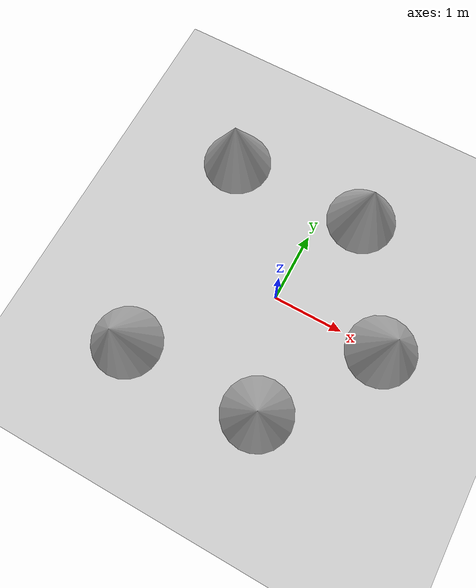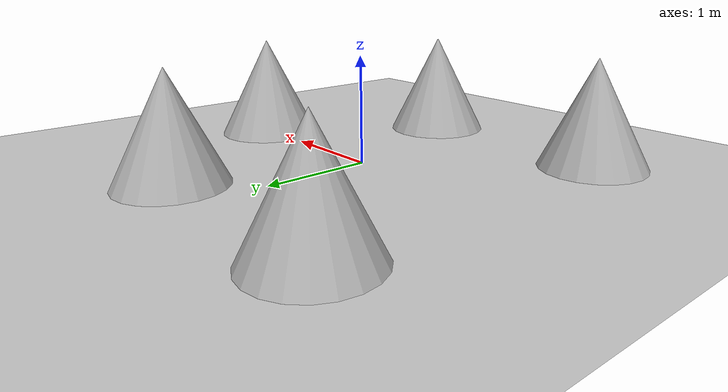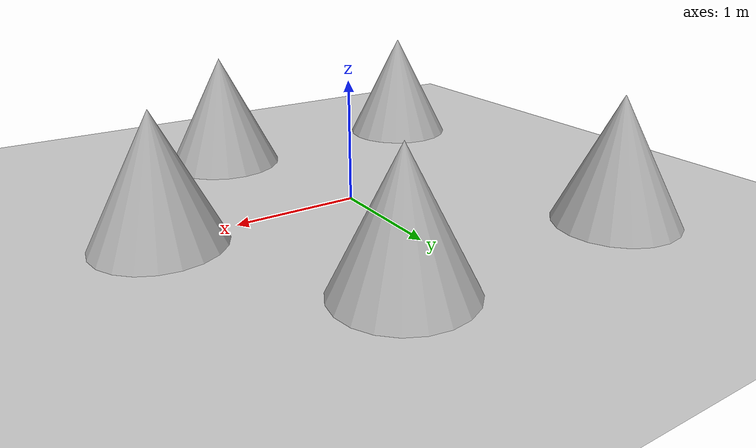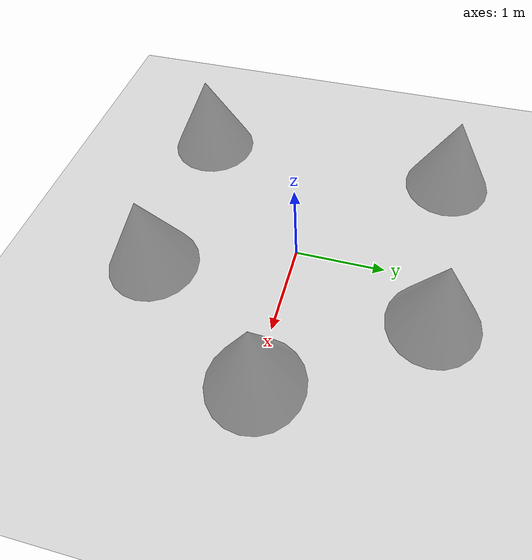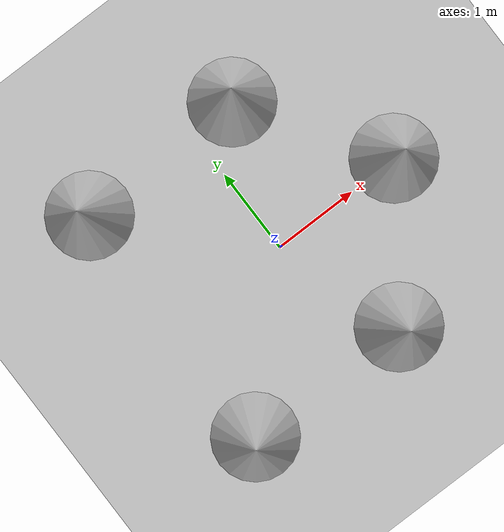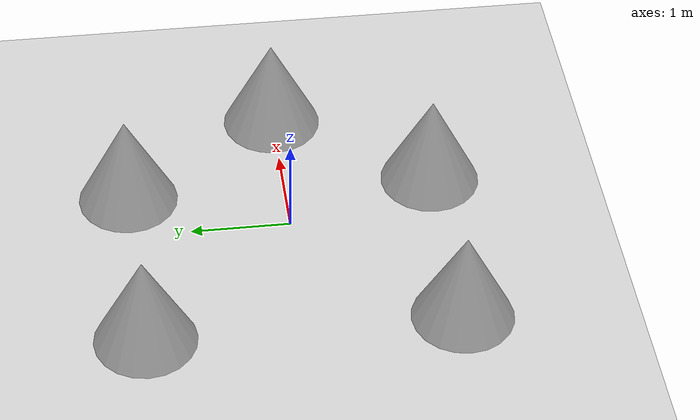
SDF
<sdf version='1.10'>
  <world name='obstacles'>
    <physics name='1ms' type='ignored'>
      <max_step_size>0.001</max_step_size>
      <real_time_factor>1</real_time_factor>
      <real_time_update_rate>1000</real_time_update_rate>
    </physics>
    <plugin name='gz::sim::systems::Physics' filename='gz-sim-physics-system'/>
    <plugin name='gz::sim::systems::UserCommands' filename='gz-sim-user-commands-system'/>
    <plugin name='gz::sim::systems::SceneBroadcaster' filename='gz-sim-scene-broadcaster-system'/>
    <plugin name='gz::sim::systems::Contact' filename='gz-sim-contact-system'/>
    <gravity>0 0 -9.8000000000000007</gravity>
    <magnetic_field>5.5644999999999998e-06 2.2875799999999999e-05 -4.2388400000000002e-05</magnetic_field>
    <atmosphere type='adiabatic'/>
    <scene>
      <ambient>0.400000006 0.400000006 0.400000006 1</ambient>
      <background>0.699999988 0.699999988 0.699999988 1</background>
      <shadows>true</shadows>
    </scene>
    <model name='ground_plane'>
      <static>true</static>
      <link name='link'>
        <collision name='collision'>
          <geometry>
            <plane>
              <normal>0 0 1</normal>
              <size>100 100</size>
            </plane>
          </geometry>
          <surface>
            <friction>
              <ode/>
            </friction>
            <bounce/>
            <contact/>
          </surface>
        </collision>
        <visual name='visual'>
          <geometry>
            <plane>
              <normal>0 0 1</normal>
              <size>100 100</size>
            </plane>
          </geometry>
          <material>
            <ambient>0.800000012 0.800000012 0.800000012 1</ambient>
            <diffuse>0.800000012 0.800000012 0.800000012 1</diffuse>
            <specular>0.800000012 0.800000012 0.800000012 1</specular>
          </material>
        </visual>
        <pose>0 0 0 0 0 0</pose>
        <inertial>
          <pose>0 0 0 0 0 0</pose>
          <mass>1</mass>
          <inertia>
            <ixx>1</ixx>
            <ixy>0</ixy>
            <ixz>0</ixz>
            <iyy>1</iyy>
            <iyz>0</iyz>
            <izz>1</izz>
          </inertia>
        </inertial>
        <enable_wind>false</enable_wind>
      </link>
      <pose>0 0 0 0 0 0</pose>
      <self_collide>false</self_collide>
    </model>
    <model name='cone'>
      <pose>0.55321228352576757 1.5890723549973638 0.5 0 0 0</pose>
      <link name='cone_link'>
        <inertial>
          <inertia>
            <ixx>0.074999999999999997</ixx>
            <ixy>0</ixy>
            <ixz>0</ixz>
            <iyy>0.074999999999999997</iyy>
            <iyz>0</iyz>
            <izz>0.074999999999999997</izz>
          </inertia>
          <mass>1</mass>
          <pose>0 0 0 0 0 0</pose>
        </inertial>
        <collision name='cone_collision'>
          <geometry>
            <cone>
              <radius>0.5</radius>
              <length>1</length>
            </cone>
          </geometry>
          <surface>
            <friction>
              <ode/>
            </friction>
            <bounce/>
            <contact/>
          </surface>
        </collision>
        <visual name='cone_visual'>
          <geometry>
            <cone>
              <radius>0.5</radius>
              <length>1</length>
            </cone>
          </geometry>
          <material>
            <ambient>0.300000012 0.300000012 0.300000012 1</ambient>
            <diffuse>0.699999988 0.699999988 0.699999988 1</diffuse>
            <specular>1 1 1 1</specular>
          </material>
        </visual>
        <pose>0 0 0 0 0 0</pose>
        <enable_wind>false</enable_wind>
      </link>
      <static>false</static>
      <self_collide>false</self_collide>
    </model>
    <model name='cone_0'>
      <pose>-1.4523786819372191 1.5485422585075759 0.5 0 0 0</pose>
      <link name='cone_link'>
        <inertial>
          <inertia>
            <ixx>0.074999999999999997</ixx>
            <ixy>0</ixy>
            <ixz>0</ixz>
            <iyy>0.074999999999999997</iyy>
            <iyz>0</iyz>
            <izz>0.074999999999999997</izz>
          </inertia>
          <mass>1</mass>
          <pose>0 0 0 0 0 0</pose>
        </inertial>
        <collision name='cone_collision'>
          <geometry>
            <cone>
              <radius>0.5</radius>
              <length>1</length>
            </cone>
          </geometry>
          <surface>
            <friction>
              <ode/>
            </friction>
            <bounce/>
            <contact/>
          </surface>
        </collision>
        <visual name='cone_visual'>
          <geometry>
            <cone>
              <radius>0.5</radius>
              <length>1</length>
            </cone>
          </geometry>
          <material>
            <ambient>0.300000012 0.300000012 0.300000012 1</ambient>
            <diffuse>0.699999988 0.699999988 0.699999988 1</diffuse>
            <specular>1 1 1 1</specular>
          </material>
        </visual>
        <pose>0 0 0 0 0 0</pose>
        <enable_wind>false</enable_wind>
      </link>
      <static>false</static>
      <self_collide>false</self_collide>
    </model>
    <model name='cone_1'>
      <pose>-1.4793563614273788 -1.4961347027351328 0.5 0 0 0</pose>
      <link name='cone_link'>
        <inertial>
          <inertia>
            <ixx>0.074999999999999997</ixx>
            <ixy>0</ixy>
            <ixz>0</ixz>
            <iyy>0.074999999999999997</iyy>
            <iyz>0</iyz>
            <izz>0.074999999999999997</izz>
          </inertia>
          <mass>1</mass>
          <pose>0 0 0 0 0 0</pose>
        </inertial>
        <collision name='cone_collision'>
          <geometry>
            <cone>
              <radius>0.5</radius>
              <length>1</length>
            </cone>
          </geometry>
          <surface>
            <friction>
              <ode/>
            </friction>
            <bounce/>
            <contact/>
          </surface>
        </collision>
        <visual name='cone_visual'>
          <geometry>
            <cone>
              <radius>0.5</radius>
              <length>1</length>
            </cone>
          </geometry>
          <material>
            <ambient>0.300000012 0.300000012 0.300000012 1</ambient>
            <diffuse>0.699999988 0.699999988 0.699999988 1</diffuse>
            <specular>1 1 1 1</specular>
          </material>
        </visual>
        <pose>0 0 0 0 0 0</pose>
        <enable_wind>false</enable_wind>
      </link>
      <static>false</static>
      <self_collide>false</self_collide>
    </model>
    <model name='cone_2'>
      <pose>0.5111676579002129 -1.4935413255607028 0.5 0 0 0</pose>
      <link name='cone_link'>
        <inertial>
          <inertia>
            <ixx>0.074999999999999997</ixx>
            <ixy>0</ixy>
            <ixz>0</ixz>
            <iyy>0.074999999999999997</iyy>
            <iyz>0</iyz>
            <izz>0.074999999999999997</izz>
          </inertia>
          <mass>1</mass>
          <pose>0 0 0 0 0 0</pose>
        </inertial>
        <collision name='cone_collision'>
          <geometry>
            <cone>
              <radius>0.5</radius>
              <length>1</length>
            </cone>
          </geometry>
          <surface>
            <friction>
              <ode/>
            </friction>
            <bounce/>
            <contact/>
          </surface>
        </collision>
        <visual name='cone_visual'>
          <geometry>
            <cone>
              <radius>0.5</radius>
              <length>1</length>
            </cone>
          </geometry>
          <material>
            <ambient>0.300000012 0.300000012 0.300000012 1</ambient>
            <diffuse>0.699999988 0.699999988 0.699999988 1</diffuse>
            <specular>1 1 1 1</specular>
          </material>
        </visual>
        <pose>0 0 0 0 0 0</pose>
        <enable_wind>false</enable_wind>
      </link>
      <static>false</static>
      <self_collide>false</self_collide>
    </model>
    <model name='cone_3'>
      <pose>1.5930897976310074 0.016421918744962738 0.5 0 0 0</pose>
      <link name='cone_link'>
        <inertial>
          <inertia>
            <ixx>0.074999999999999997</ixx>
            <ixy>0</ixy>
            <ixz>0</ixz>
            <iyy>0.074999999999999997</iyy>
            <iyz>0</iyz>
            <izz>0.074999999999999997</izz>
          </inertia>
          <mass>1</mass>
          <pose>0 0 0 0 0 0</pose>
        </inertial>
        <collision name='cone_collision'>
          <geometry>
            <cone>
              <radius>0.5</radius>
              <length>1</length>
            </cone>
          </geometry>
          <surface>
            <friction>
              <ode/>
            </friction>
            <bounce/>
            <contact/>
          </surface>
        </collision>
        <visual name='cone_visual'>
          <geometry>
            <cone>
              <radius>0.5</radius>
              <length>1</length>
            </cone>
          </geometry>
          <material>
            <ambient>0.300000012 0.300000012 0.300000012 1</ambient>
            <diffuse>0.699999988 0.699999988 0.699999988 1</diffuse>
            <specular>1 1 1 1</specular>
          </material>
        </visual>
        <pose>0 0 0 0 0 0</pose>
        <enable_wind>false</enable_wind>
      </link>
      <static>false</static>
      <self_collide>false</self_collide>
    </model>
    <light name='sun' type='directional'>
      <pose>0 0 10 0 0 0</pose>
      <cast_shadows>true</cast_shadows>
      <intensity>1</intensity>
      <direction>-0.5 0.10000000000000001 -0.90000000000000002</direction>
      <diffuse>0.800000012 0.800000012 0.800000012 1</diffuse>
      <specular>0.200000003 0.200000003 0.200000003 1</specular>
      <attenuation>
        <range>1000</range>
        <linear>0.01</linear>
        <constant>0.90000000000000002</constant>
        <quadratic>0.001</quadratic>
      </attenuation>
      <spot>
        <inner_angle>0</inner_angle>
        <outer_angle>0</outer_angle>
        <falloff>0</falloff>
      </spot>
    </light>
  </world>
</sdf>
